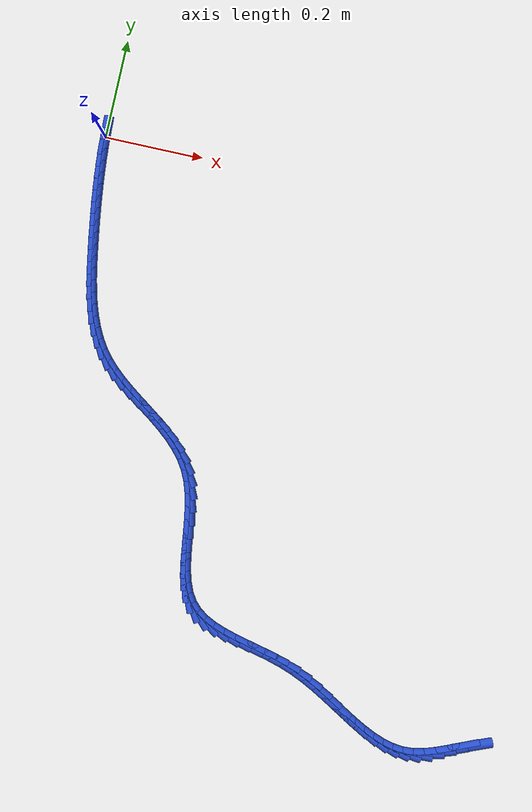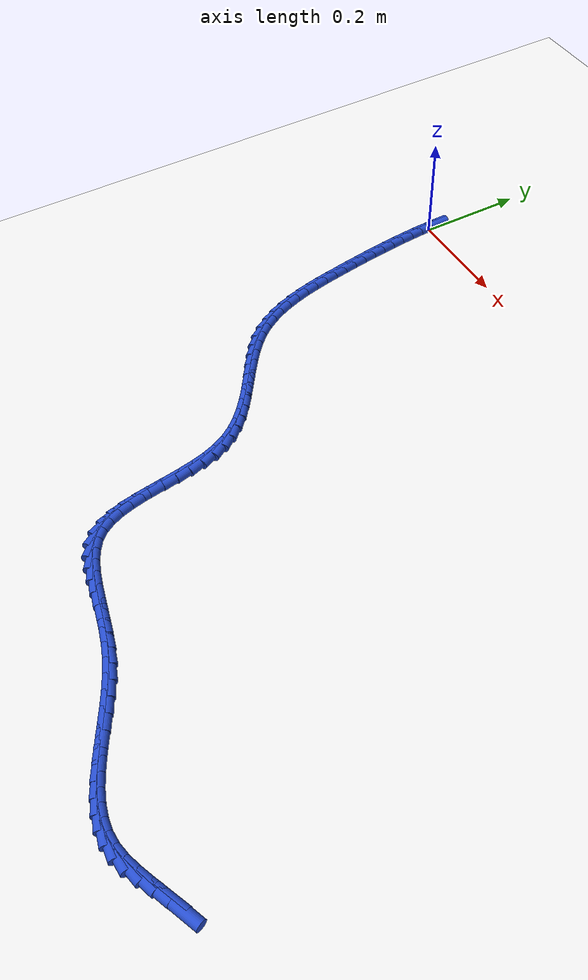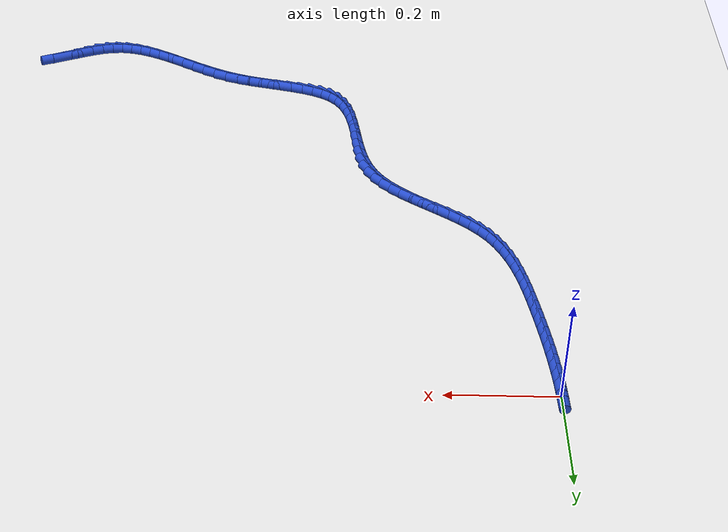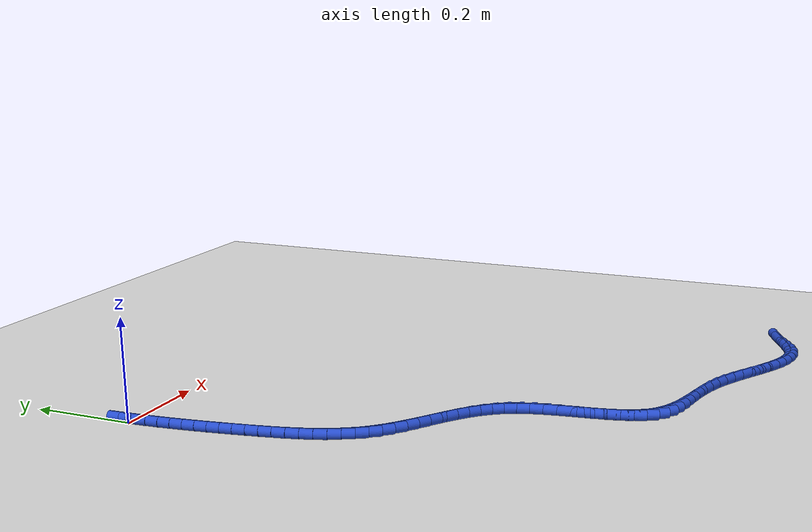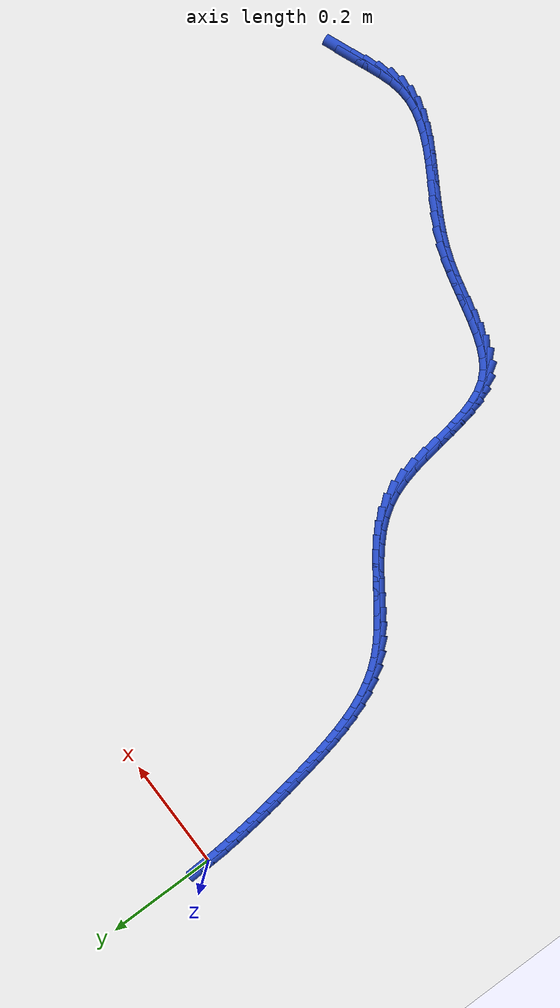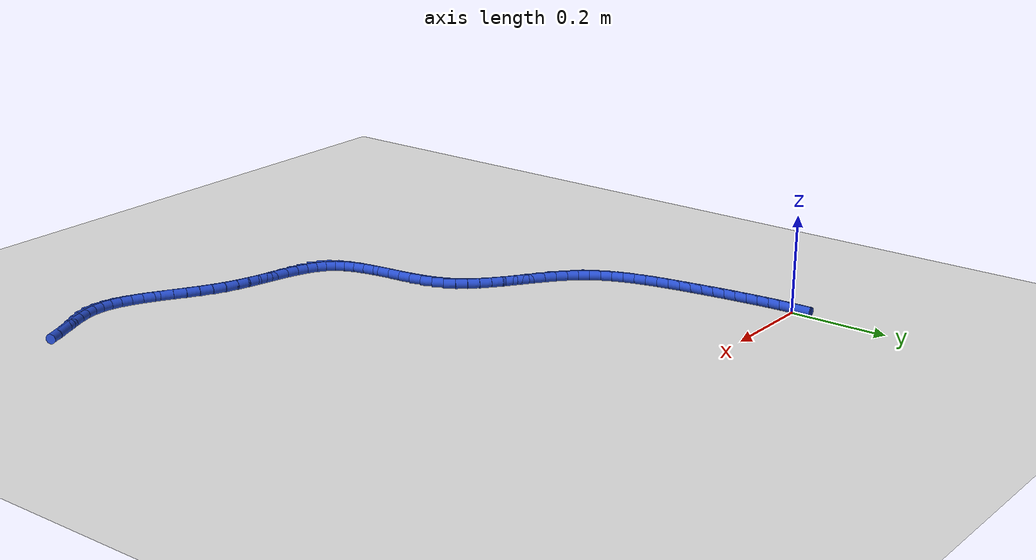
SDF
<sdf version="1.6">
 <world name="default">
  <model name="ground_plane">
   <static>1</static>
   <link name="link">
    <collision name="collision">
     <geometry><plane><normal>0 0 1</normal><size>100 100</size></plane></geometry>
     <surface><friction><ode><mu>100</mu><mu2>50</mu2></ode></friction></surface>
    </collision>
    <visual name="visual">
     <cast_shadows>0</cast_shadows>
     <geometry><plane><normal>0 0 1</normal><size>100 100</size></plane></geometry>
     <material>
      <script><uri>file://media/materials/scripts/gazebo.material</uri><name>Gazebo/WhiteGlow</name></script>
     </material>
    </visual>
   </link>
  </model>
  <model name="line">
   <link name="link_0">
    <pose>-6.342582709040201e-18 6.938893903907228e-17 0.01 0 1.57 -1.5347871412486813</pose>
    <collision name="collision">
     <geometry><cylinder><radius>0.01</radius><length>0.08</length></cylinder></geometry>
    </collision>
    <visual name="visual">
     <material>
      <script><name>Gazebo/Blue</name><uri>file://media/materials/scripts/gazebo.material</uri></script>
     </material>
     <geometry><cylinder><radius>0.01</radius><length>0.08</length></cylinder></geometry>
    </visual>
   </link>
   <link name="link_212">
    <pose>0.9769462641701763 -1.0291784544104534 0.01 0 1.57 0.3843465865898407</pose>
    <collision name="collision">
     <geometry><cylinder><radius>0.01</radius><length>0.08</length></cylinder></geometry>
    </collision>
    <visual name="visual">
     <material>
      <script><name>Gazebo/Blue</name><uri>file://media/materials/scripts/gazebo.material</uri></script>
     </material>
     <geometry><cylinder><radius>0.01</radius><length>0.08</length></cylinder></geometry>
    </visual>
   </link>
   <link name="link_213">
    <pose>0.9537179464258464 -1.0385734150703554 0.01 0 1.57 0.40229505601566673</pose>
    <collision name="collision">
     <geometry><cylinder><radius>0.01</radius><length>0.08</length></cylinder></geometry>
    </collision>
    <visual name="visual">
     <material>
      <script><name>Gazebo/Blue</name><uri>file://media/materials/scripts/gazebo.material</uri></script>
     </material>
     <geometry><cylinder><radius>0.01</radius><length>0.08</length></cylinder></geometry>
    </visual>
   </link>
   <link name="link_214">
    <pose>0.9308680753154793 -1.048296061683394 0.01 0 1.57 0.3817067622063833</pose>
    <collision name="collision">
     <geometry><cylinder><radius>0.01</radius><length>0.08</length></cylinder></geometry>
    </collision>
    <visual name="visual">
     <material>
      <script><name>Gazebo/Blue</name><uri>file://media/materials/scripts/gazebo.material</uri></script>
     </material>
     <geometry><cylinder><radius>0.01</radius><length>0.08</length></cylinder></geometry>
    </visual>
   </link>
   <link name="link_215">
    <pose>0.9083748429309372 -1.057324690325629 0.01 0 1.57 0.31877337188029486</pose>
    <collision name="collision">
     <geometry><cylinder><radius>0.01</radius><length>0.08</length></cylinder></geometry>
    </collision>
    <visual name="visual">
     <material>
      <script><name>Gazebo/Blue</name><uri>file://media/materials/scripts/gazebo.material</uri></script>
     </material>
     <geometry><cylinder><radius>0.01</radius><length>0.08</length></cylinder></geometry>
    </visual>
   </link>
   <link name="link_216">
    <pose>0.8862164413640825 -1.0646375970731223 0.01 0 1.57 0.20646389172152183</pose>
    <collision name="collision">
     <geometry><cylinder><radius>0.01</radius><length>0.08</length></cylinder></geometry>
    </collision>
    <visual name="visual">
     <material>
      <script><name>Gazebo/Blue</name><uri>file://media/materials/scripts/gazebo.material</uri></script>
     </material>
     <geometry><cylinder><radius>0.01</radius><length>0.08</length></cylinder></geometry>
    </visual>
   </link>
   <link name="link_217">
    <pose>0.8643710627067764 -1.0692130780019335 0.01 0 1.57 0.046662001896208075</pose>
    <collision name="collision">
     <geometry><cylinder><radius>0.01</radius><length>0.08</length></cylinder></geometry>
    </collision>
    <visual name="visual">
     <material>
      <script><name>Gazebo/Blue</name><uri>file://media/materials/scripts/gazebo.material</uri></script>
     </material>
     <geometry><cylinder><radius>0.01</radius><length>0.08</length></cylinder></geometry>
    </visual>
   </link>
   <link name="link_218">
    <pose>0.8428075852378676 -1.0702200039421013 0.01 0 1.57 -0.11222847916228765</pose>
    <collision name="collision">
     <geometry><cylinder><radius>0.01</radius><length>0.08</length></cylinder></geometry>
    </collision>
    <visual name="visual">
     <material>
      <script><name>Gazebo/Blue</name><uri>file://media/materials/scripts/gazebo.material</uri></script>
     </material>
     <geometry><cylinder><radius>0.01</radius><length>0.08</length></cylinder></geometry>
    </visual>
   </link>
   <link name="link_219">
    <pose>0.8214467311685518 -1.0678125919754724 0.01 0 1.57 -0.24660604657394164</pose>
    <collision name="collision">
     <geometry><cylinder><radius>0.01</radius><length>0.08</length></cylinder></geometry>
    </collision>
    <visual name="visual">
     <material>
      <script><name>Gazebo/Blue</name><uri>file://media/materials/scripts/gazebo.material</uri></script>
     </material>
     <geometry><cylinder><radius>0.01</radius><length>0.08</length></cylinder></geometry>
    </visual>
   </link>
   <link name="link_220">
    <pose>0.8001937051518223 -1.062462571982601 0.01 0 1.57 -0.3528030326790865</pose>
    <collision name="collision">
     <geometry><cylinder><radius>0.01</radius><length>0.08</length></cylinder></geometry>
    </collision>
    <visual name="visual">
     <material>
      <script><name>Gazebo/Blue</name><uri>file://media/materials/scripts/gazebo.material</uri></script>
     </material>
     <geometry><cylinder><radius>0.01</radius><length>0.08</length></cylinder></geometry>
    </visual>
   </link>
   <link name="link_221">
    <pose>0.7789537043178486 -1.054641827772413 0.01 0 1.57 -0.43158638162095014</pose>
    <collision name="collision">
     <geometry><cylinder><radius>0.01</radius><length>0.08</length></cylinder></geometry>
    </collision>
    <visual name="visual">
     <material>
      <script><name>Gazebo/Blue</name><uri>file://media/materials/scripts/gazebo.material</uri></script>
     </material>
     <geometry><cylinder><radius>0.01</radius><length>0.08</length></cylinder></geometry>
    </visual>
   </link>
   <link name="link_222">
    <pose>0.7576319257968009 -1.0448222431538354 0.01 0 1.57 -0.48562882518094386</pose>
    <collision name="collision">
     <geometry><cylinder><radius>0.01</radius><length>0.08</length></cylinder></geometry>
    </collision>
    <visual name="visual">
     <material>
      <script><name>Gazebo/Blue</name><uri>file://media/materials/scripts/gazebo.material</uri></script>
     </material>
     <geometry><cylinder><radius>0.01</radius><length>0.08</length></cylinder></geometry>
    </visual>
   </link>
   <link name="link_223">
    <pose>0.7361335667188486 -1.0334757019357936 0.01 0 1.57 -0.517820971242503</pose>
    <collision name="collision">
     <geometry><cylinder><radius>0.01</radius><length>0.08</length></cylinder></geometry>
    </collision>
    <visual name="visual">
     <material>
      <script><name>Gazebo/Blue</name><uri>file://media/materials/scripts/gazebo.material</uri></script>
     </material>
     <geometry><cylinder><radius>0.01</radius><length>0.08</length></cylinder></geometry>
    </visual>
   </link>
   <link name="link_224">
    <pose>0.7143638242141619 -1.0210740879272158 0.01 0 1.57 -0.5305038240289524</pose>
    <collision name="collision">
     <geometry><cylinder><radius>0.01</radius><length>0.08</length></cylinder></geometry>
    </collision>
    <visual name="visual">
     <material>
      <script><name>Gazebo/Blue</name><uri>file://media/materials/scripts/gazebo.material</uri></script>
     </material>
     <geometry><cylinder><radius>0.01</radius><length>0.08</length></cylinder></geometry>
    </visual>
   </link>
   <link name="link_225">
    <pose>0.6922278954129105 -1.008089284937027 0.01 0 1.57 -0.525249134142659</pose>
    <collision name="collision">
     <geometry><cylinder><radius>0.01</radius><length>0.08</length></cylinder></geometry>
    </collision>
    <visual name="visual">
     <material>
      <script><name>Gazebo/Blue</name><uri>file://media/materials/scripts/gazebo.material</uri></script>
     </material>
     <geometry><cylinder><radius>0.01</radius><length>0.08</length></cylinder></geometry>
    </visual>
   </link>
   <link name="link_226">
    <pose>0.6696309774452638 -0.9949931767741544 0.01 0 1.57 -0.5028942442427573</pose>
    <collision name="collision">
     <geometry><cylinder><radius>0.01</radius><length>0.08</length></cylinder></geometry>
    </collision>
    <visual name="visual">
     <material>
      <script><name>Gazebo/Blue</name><uri>file://media/materials/scripts/gazebo.material</uri></script>
     </material>
     <geometry><cylinder><radius>0.01</radius><length>0.08</length></cylinder></geometry>
    </visual>
   </link>
   <link name="link_227">
    <pose>0.646478267441393 -0.9822576472475251 0.01 0 1.57 -0.46369515173904946</pose>
    <collision name="collision">
     <geometry><cylinder><radius>0.01</radius><length>0.08</length></cylinder></geometry>
    </collision>
    <visual name="visual">
     <material>
      <script><name>Gazebo/Blue</name><uri>file://media/materials/scripts/gazebo.material</uri></script>
     </material>
     <geometry><cylinder><radius>0.01</radius><length>0.08</length></cylinder></geometry>
    </visual>
   </link>
   <link name="link_228">
    <pose>0.6226749625314671 -0.9703545801660651 0.01 0 1.57 -0.40756780398236364</pose>
    <collision name="collision">
     <geometry><cylinder><radius>0.01</radius><length>0.08</length></cylinder></geometry>
    </collision>
    <visual name="visual">
     <material>
      <script><name>Gazebo/Blue</name><uri>file://media/materials/scripts/gazebo.material</uri></script>
     </material>
     <geometry><cylinder><radius>0.01</radius><length>0.08</length></cylinder></geometry>
    </visual>
   </link>
   <link name="link_229">
    <pose>0.5981262598456564 -0.9597558593387012 0.01 0 1.57 -0.3370784449283346</pose>
    <collision name="collision">
     <geometry><cylinder><radius>0.01</radius><length>0.08</length></cylinder></geometry>
    </collision>
    <visual name="visual">
     <material>
      <script><name>Gazebo/Blue</name><uri>file://media/materials/scripts/gazebo.material</uri></script>
     </material>
     <geometry><cylinder><radius>0.01</radius><length>0.08</length></cylinder></geometry>
    </visual>
   </link>
   <link name="link_230">
    <pose>0.5727712516797364 -0.9508701172717429 0.01 0 1.57 -0.2772925375074847</pose>
    <collision name="collision">
     <geometry><cylinder><radius>0.01</radius><length>0.08</length></cylinder></geometry>
    </collision>
    <visual name="visual">
     <material>
      <script><name>Gazebo/Blue</name><uri>file://media/materials/scripts/gazebo.material</uri></script>
     </material>
     <geometry><cylinder><radius>0.01</radius><length>0.08</length></cylinder></geometry>
    </visual>
   </link>
   <link name="link_231">
    <pose>0.5468742138085351 -0.9434991660511947 0.01 0 1.57 -0.24113589728125084</pose>
    <collision name="collision">
     <geometry><cylinder><radius>0.01</radius><length>0.08</length></cylinder></geometry>
    </collision>
    <visual name="visual">
     <material>
      <script><name>Gazebo/Blue</name><uri>file://media/materials/scripts/gazebo.material</uri></script>
     </material>
     <geometry><cylinder><radius>0.01</radius><length>0.08</length></cylinder></geometry>
    </visual>
   </link>
   <link name="link_232">
    <pose>0.5208805679966462 -0.9371067837215793 0.01 0 1.57 -0.22813520265295148</pose>
    <collision name="collision">
     <geometry><cylinder><radius>0.01</radius><length>0.08</length></cylinder></geometry>
    </collision>
    <visual name="visual">
     <material>
      <script><name>Gazebo/Blue</name><uri>file://media/materials/scripts/gazebo.material</uri></script>
     </material>
     <geometry><cylinder><radius>0.01</radius><length>0.08</length></cylinder></geometry>
    </visual>
   </link>
   <link name="link_233">
    <pose>0.49523769456325606 -0.931153093495617 0.01 0 1.57 -0.23904874294139858</pose>
    <collision name="collision">
     <geometry><cylinder><radius>0.01</radius><length>0.08</length></cylinder></geometry>
    </collision>
    <visual name="visual">
     <material>
      <script><name>Gazebo/Blue</name><uri>file://media/materials/scripts/gazebo.material</uri></script>
     </material>
     <geometry><cylinder><radius>0.01</radius><length>0.08</length></cylinder></geometry>
    </visual>
   </link>
   <link name="link_234">
    <pose>0.4703929738275505 -0.9250982185860284 0.01 0 1.57 -0.27646961595855285</pose>
    <collision name="collision">
     <geometry><cylinder><radius>0.01</radius><length>0.08</length></cylinder></geometry>
    </collision>
    <visual name="visual">
     <material>
      <script><name>Gazebo/Blue</name><uri>file://media/materials/scripts/gazebo.material</uri></script>
     </material>
     <geometry><cylinder><radius>0.01</radius><length>0.08</length></cylinder></geometry>
    </visual>
   </link>
   <link name="link_235">
    <pose>0.44679378610871767 -0.9184022822055331 0.01 0 1.57 -0.34517630009046507</pose>
    <collision name="collision">
     <geometry><cylinder><radius>0.01</radius><length>0.08</length></cylinder></geometry>
    </collision>
    <visual name="visual">
     <material>
      <script><name>Gazebo/Blue</name><uri>file://media/materials/scripts/gazebo.material</uri></script>
     </material>
     <geometry><cylinder><radius>0.01</radius><length>0.08</length></cylinder></geometry>
    </visual>
   </link>
   <link name="link_236">
    <pose>0.424887511725943 -0.9105254075668512 0.01 0 1.57 -0.45203393595349356</pose>
    <collision name="collision">
     <geometry><cylinder><radius>0.01</radius><length>0.08</length></cylinder></geometry>
    </collision>
    <visual name="visual">
     <material>
      <script><name>Gazebo/Blue</name><uri>file://media/materials/scripts/gazebo.material</uri></script>
     </material>
     <geometry><cylinder><radius>0.01</radius><length>0.08</length></cylinder></geometry>
    </visual>
   </link>
   <link name="link_237">
    <pose>0.4051215309984133 -0.9009277178827028 0.01 0 1.57 -0.6041939298585265</pose>
    <collision name="collision">
     <geometry><cylinder><radius>0.01</radius><length>0.08</length></cylinder></geometry>
    </collision>
    <visual name="visual">
     <material>
      <script><name>Gazebo/Blue</name><uri>file://media/materials/scripts/gazebo.material</uri></script>
     </material>
     <geometry><cylinder><radius>0.01</radius><length>0.08</length></cylinder></geometry>
    </visual>
   </link>
   <link name="link_238">
    <pose>0.38794322424531485 -0.8890693363658079 0.01 0 1.57 -0.8031093343890058</pose>
    <collision name="collision">
     <geometry><cylinder><radius>0.01</radius><length>0.08</length></cylinder></geometry>
    </collision>
    <visual name="visual">
     <material>
      <script><name>Gazebo/Blue</name><uri>file://media/materials/scripts/gazebo.material</uri></script>
     </material>
     <geometry><cylinder><radius>0.01</radius><length>0.08</length></cylinder></geometry>
    </visual>
   </link>
   <link name="link_239">
    <pose>0.3737972174107305 -0.8744131557179531 0.01 0 1.57 -1.0141685234866855</pose>
    <collision name="collision">
     <geometry><cylinder><radius>0.01</radius><length>0.08</length></cylinder></geometry>
    </collision>
    <visual name="visual">
     <material>
      <script><name>Gazebo/Blue</name><uri>file://media/materials/scripts/gazebo.material</uri></script>
     </material>
     <geometry><cylinder><radius>0.01</radius><length>0.08</length></cylinder></geometry>
    </visual>
   </link>
   <link name="link_240">
    <pose>0.3628045270379873 -0.8567474537695088 0.01 0 1.57 -1.1802188182242952</pose>
    <collision name="collision">
     <geometry><cylinder><radius>0.01</radius><length>0.08</length></cylinder></geometry>
    </collision>
    <visual name="visual">
     <material>
      <script><name>Gazebo/Blue</name><uri>file://media/materials/scripts/gazebo.material</uri></script>
     </material>
     <geometry><cylinder><radius>0.01</radius><length>0.08</length></cylinder></geometry>
    </visual>
   </link>
   <link name="link_241">
    <pose>0.3544628071019571 -0.836487291469682 0.01 0 1.57 -1.297750704465856</pose>
    <collision name="collision">
     <geometry><cylinder><radius>0.01</radius><length>0.08</length></cylinder></geometry>
    </collision>
    <visual name="visual">
     <material>
      <script><name>Gazebo/Blue</name><uri>file://media/materials/scripts/gazebo.material</uri></script>
     </material>
     <geometry><cylinder><radius>0.01</radius><length>0.08</length></cylinder></geometry>
    </visual>
   </link>
   <link name="link_242">
    <pose>0.34819880268826864 -0.8141190277521955 0.01 0 1.57 -1.3749426455116218</pose>
    <collision name="collision">
     <geometry><cylinder><radius>0.01</radius><length>0.08</length></cylinder></geometry>
    </collision>
    <visual name="visual">
     <material>
      <script><name>Gazebo/Blue</name><uri>file://media/materials/scripts/gazebo.material</uri></script>
     </material>
     <geometry><cylinder><radius>0.01</radius><length>0.08</length></cylinder></geometry>
    </visual>
   </link>
   <link name="link_243">
    <pose>0.3434392588825506 -0.7901290215507704 0.01 0 1.57 -1.419590022154002</pose>
    <collision name="collision">
     <geometry><cylinder><radius>0.01</radius><length>0.08</length></cylinder></geometry>
    </collision>
    <visual name="visual">
     <material>
      <script><name>Gazebo/Blue</name><uri>file://media/materials/scripts/gazebo.material</uri></script>
     </material>
     <geometry><cylinder><radius>0.01</radius><length>0.08</length></cylinder></geometry>
    </visual>
   </link>
   <link name="link_244">
    <pose>0.33961092077043226 -0.7650036317991313 0.01 0 1.57 -1.4369565923082241</pose>
    <collision name="collision">
     <geometry><cylinder><radius>0.01</radius><length>0.08</length></cylinder></geometry>
    </collision>
    <visual name="visual">
     <material>
      <script><name>Gazebo/Blue</name><uri>file://media/materials/scripts/gazebo.material</uri></script>
     </material>
     <geometry><cylinder><radius>0.01</radius><length>0.08</length></cylinder></geometry>
    </visual>
   </link>
   <link name="link_245">
    <pose>0.33614053343754213 -0.7392292174309996 0.01 0 1.57 -1.429640126534961</pose>
    <collision name="collision">
     <geometry><cylinder><radius>0.01</radius><length>0.08</length></cylinder></geometry>
    </collision>
    <visual name="visual">
     <material>
      <script><name>Gazebo/Blue</name><uri>file://media/materials/scripts/gazebo.material</uri></script>
     </material>
     <geometry><cylinder><radius>0.01</radius><length>0.08</length></cylinder></geometry>
    </visual>
   </link>
   <link name="link_246">
    <pose>0.3324548419695091 -0.7132921373800978 0.01 0 1.57 -1.3978572240453668</pose>
    <collision name="collision">
     <geometry><cylinder><radius>0.01</radius><length>0.08</length></cylinder></geometry>
    </collision>
    <visual name="visual">
     <material>
      <script><name>Gazebo/Blue</name><uri>file://media/materials/scripts/gazebo.material</uri></script>
     </material>
     <geometry><cylinder><radius>0.01</radius><length>0.08</length></cylinder></geometry>
    </visual>
   </link>
   <link name="link_247">
    <pose>0.327980591451962 -0.6876787505801482 0.01 0 1.57 -1.3397062040399756</pose>
    <collision name="collision">
     <geometry><cylinder><radius>0.01</radius><length>0.08</length></cylinder></geometry>
    </collision>
    <visual name="visual">
     <material>
      <script><name>Gazebo/Blue</name><uri>file://media/materials/scripts/gazebo.material</uri></script>
     </material>
     <geometry><cylinder><radius>0.01</radius><length>0.08</length></cylinder></geometry>
    </visual>
   </link>
   <link name="link_248">
    <pose>0.3221445269705297 -0.6628754159648734 0.01 0 1.57 -1.25151758639383</pose>
    <collision name="collision">
     <geometry><cylinder><radius>0.01</radius><length>0.08</length></cylinder></geometry>
    </collision>
    <visual name="visual">
     <material>
      <script><name>Gazebo/Blue</name><uri>file://media/materials/scripts/gazebo.material</uri></script>
     </material>
     <geometry><cylinder><radius>0.01</radius><length>0.08</length></cylinder></geometry>
    </visual>
   </link>
   <link name="link_249">
    <pose>0.31437339361084105 -0.6393684924679959 0.01 0 1.57 -1.1291759702834105</pose>
    <collision name="collision">
     <geometry><cylinder><radius>0.01</radius><length>0.08</length></cylinder></geometry>
    </collision>
    <visual name="visual">
     <material>
      <script><name>Gazebo/Blue</name><uri>file://media/materials/scripts/gazebo.material</uri></script>
     </material>
     <geometry><cylinder><radius>0.01</radius><length>0.08</length></cylinder></geometry>
    </visual>
   </link>
   <link name="link_250">
    <pose>0.304100556294397 -0.6176390648166512 0.01 0 1.57 -0.9903884017779636</pose>
    <collision name="collision">
     <geometry><cylinder><radius>0.01</radius><length>0.08</length></cylinder></geometry>
    </collision>
    <visual name="visual">
     <material>
      <script><name>Gazebo/Blue</name><uri>file://media/materials/scripts/gazebo.material</uri></script>
     </material>
     <geometry><cylinder><radius>0.01</radius><length>0.08</length></cylinder></geometry>
    </visual>
   </link>
   <link name="link_251">
    <pose>0.2911358353813599 -0.5978682852634433 0.01 0 1.57 -0.8694797479286598</pose>
    <collision name="collision">
     <geometry><cylinder><radius>0.01</radius><length>0.08</length></cylinder></geometry>
    </collision>
    <visual name="visual">
     <material>
      <script><name>Gazebo/Blue</name><uri>file://media/materials/scripts/gazebo.material</uri></script>
     </material>
     <geometry><cylinder><radius>0.01</radius><length>0.08</length></cylinder></geometry>
    </visual>
   </link>
   <link name="link_252">
    <pose>0.2758609370631213 -0.5797816687799179 0.01 0 1.57 -0.772395341361187</pose>
    <collision name="collision">
     <geometry><cylinder><radius>0.01</radius><length>0.08</length></cylinder></geometry>
    </collision>
    <visual name="visual">
     <material>
      <script><name>Gazebo/Blue</name><uri>file://media/materials/scripts/gazebo.material</uri></script>
     </material>
     <geometry><cylinder><radius>0.01</radius><length>0.08</length></cylinder></geometry>
    </visual>
   </link>
   <link name="link_253">
    <pose>0.25870542851435735 -0.5630665981666529 0.01 0 1.57 -0.6994986316632609</pose>
    <collision name="collision">
     <geometry><cylinder><radius>0.01</radius><length>0.08</length></cylinder></geometry>
    </collision>
    <visual name="visual">
     <material>
      <script><name>Gazebo/Blue</name><uri>file://media/materials/scripts/gazebo.material</uri></script>
     </material>
     <geometry><cylinder><radius>0.01</radius><length>0.08</length></cylinder></geometry>
    </visual>
   </link>
   <link name="link_254">
    <pose>0.24009887690974302 -0.5474104562242242 0.01 0 1.57 -0.6496291529321546</pose>
    <collision name="collision">
     <geometry><cylinder><radius>0.01</radius><length>0.08</length></cylinder></geometry>
    </collision>
    <visual name="visual">
     <material>
      <script><name>Gazebo/Blue</name><uri>file://media/materials/scripts/gazebo.material</uri></script>
     </material>
     <geometry><cylinder><radius>0.01</radius><length>0.08</length></cylinder></geometry>
    </visual>
   </link>
   <link name="link_255">
    <pose>0.22047084942395354 -0.5325006257532081 0.01 0 1.57 -0.6213399500990374</pose>
    <collision name="collision">
     <geometry><cylinder><radius>0.01</radius><length>0.08</length></cylinder></geometry>
    </collision>
    <visual name="visual">
     <material>
      <script><name>Gazebo/Blue</name><uri>file://media/materials/scripts/gazebo.material</uri></script>
     </material>
     <geometry><cylinder><radius>0.01</radius><length>0.08</length></cylinder></geometry>
    </visual>
   </link>
   <link name="link_256">
    <pose>0.20025091323166422 -0.5180244895541809 0.01 0 1.57 -0.6136001715673899</pose>
    <collision name="collision">
     <geometry><cylinder><radius>0.01</radius><length>0.08</length></cylinder></geometry>
    </collision>
    <visual name="visual">
     <material>
      <script><name>Gazebo/Blue</name><uri>file://media/materials/scripts/gazebo.material</uri></script>
     </material>
     <geometry><cylinder><radius>0.01</radius><length>0.08</length></cylinder></geometry>
    </visual>
   </link>
   <link name="link_257">
    <pose>0.1798686355075505 -0.5036694304277191 0.01 0 1.57 -0.6261075437698371</pose>
    <collision name="collision">
     <geometry><cylinder><radius>0.01</radius><length>0.08</length></cylinder></geometry>
    </collision>
    <visual name="visual">
     <material>
      <script><name>Gazebo/Blue</name><uri>file://media/materials/scripts/gazebo.material</uri></script>
     </material>
     <geometry><cylinder><radius>0.01</radius><length>0.08</length></cylinder></geometry>
    </visual>
   </link>
   <link name="link_258">
    <pose>0.1597535834262875 -0.4891228311743993 0.01 0 1.57 -0.659361725865715</pose>
    <collision name="collision">
     <geometry><cylinder><radius>0.01</radius><length>0.08</length></cylinder></geometry>
    </collision>
    <visual name="visual">
     <material>
      <script><name>Gazebo/Blue</name><uri>file://media/materials/scripts/gazebo.material</uri></script>
     </material>
     <geometry><cylinder><radius>0.01</radius><length>0.08</length></cylinder></geometry>
    </visual>
   </link>
   <link name="link_259">
    <pose>0.14033532416255073 -0.4740720745947977 0.01 0 1.57 -0.7145448193470851</pose>
    <collision name="collision">
     <geometry><cylinder><radius>0.01</radius><length>0.08</length></cylinder></geometry>
    </collision>
    <visual name="visual">
     <material>
      <script><name>Gazebo/Blue</name><uri>file://media/materials/scripts/gazebo.material</uri></script>
     </material>
     <geometry><cylinder><radius>0.01</radius><length>0.08</length></cylinder></geometry>
    </visual>
   </link>
   <link name="link_260">
    <pose>0.12204342489101534 -0.4582045434894909 0.01 0 1.57 -0.7931338030794454</pose>
    <collision name="collision">
     <geometry><cylinder><radius>0.01</radius><length>0.08</length></cylinder></geometry>
    </collision>
    <visual name="visual">
     <material>
      <script><name>Gazebo/Blue</name><uri>file://media/materials/scripts/gazebo.material</uri></script>
     </material>
     <geometry><cylinder><radius>0.01</radius><length>0.08</length></cylinder></geometry>
    </visual>
   </link>
   <link name="link_261">
    <pose>0.10530745278635623 -0.4412076206590548 0.01 0 1.57 -0.8948771257628803</pose>
    <collision name="collision">
     <geometry><cylinder><radius>0.01</radius><length>0.08</length></cylinder></geometry>
    </collision>
    <visual name="visual">
     <material>
      <script><name>Gazebo/Blue</name><uri>file://media/materials/scripts/gazebo.material</uri></script>
     </material>
     <geometry><cylinder><radius>0.01</radius><length>0.08</length></cylinder></geometry>
    </visual>
   </link>
   <link name="link_262">
    <pose>0.09053480491436372 -0.42278634812543625 0.01 0 1.57 -1.000477435084099</pose>
    <collision name="collision">
     <geometry><cylinder><radius>0.01</radius><length>0.08</length></cylinder></geometry>
    </collision>
    <visual name="visual">
     <material>
      <script><name>Gazebo/Blue</name><uri>file://media/materials/scripts/gazebo.material</uri></script>
     </material>
     <geometry><cylinder><radius>0.01</radius><length>0.08</length></cylinder></geometry>
    </visual>
   </link>
   <link name="link_263">
    <pose>0.07779095537419388 -0.40291812080655237 0.01 0 1.57 -1.0937517061492512</pose>
    <collision name="collision">
     <geometry><cylinder><radius>0.01</radius><length>0.08</length></cylinder></geometry>
    </collision>
    <visual name="visual">
     <material>
      <script><name>Gazebo/Blue</name><uri>file://media/materials/scripts/gazebo.material</uri></script>
     </material>
     <geometry><cylinder><radius>0.01</radius><length>0.08</length></cylinder></geometry>
    </visual>
   </link>
   <link name="link_264">
    <pose>0.06687285299956797 -0.3817942228316913 0.01 0 1.57 -1.1737063230180873</pose>
    <collision name="collision">
     <geometry><cylinder><radius>0.01</radius><length>0.08</length></cylinder></geometry>
    </collision>
    <visual name="visual">
     <material>
      <script><name>Gazebo/Blue</name><uri>file://media/materials/scripts/gazebo.material</uri></script>
     </material>
     <geometry><cylinder><radius>0.01</radius><length>0.08</length></cylinder></geometry>
    </visual>
   </link>
   <link name="link_265">
    <pose>0.05757022527315894 -0.3596116903739142 0.01 0 1.57 -1.240631748566986</pose>
    <collision name="collision">
     <geometry><cylinder><radius>0.01</radius><length>0.08</length></cylinder></geometry>
    </collision>
    <visual name="visual">
     <material>
      <script><name>Gazebo/Blue</name><uri>file://media/materials/scripts/gazebo.material</uri></script>
     </material>
     <geometry><cylinder><radius>0.01</radius><length>0.08</length></cylinder></geometry>
    </visual>
   </link>
   <link name="link_266">
    <pose>0.049672799677639566 -0.3365675596062818 0.01 0 1.57 -1.2952837795069128</pose>
    <collision name="collision">
     <geometry><cylinder><radius>0.01</radius><length>0.08</length></cylinder></geometry>
    </collision>
    <visual name="visual">
     <material>
      <script><name>Gazebo/Blue</name><uri>file://media/materials/scripts/gazebo.material</uri></script>
     </material>
     <geometry><cylinder><radius>0.01</radius><length>0.08</length></cylinder></geometry>
    </visual>
   </link>
   <link name="link_267">
    <pose>0.04297030369568277 -0.3128588667018552 0.01 0 1.57 -1.3385569544018658</pose>
    <collision name="collision">
     <geometry><cylinder><radius>0.01</radius><length>0.08</length></cylinder></geometry>
    </collision>
    <visual name="visual">
     <material>
      <script><name>Gazebo/Blue</name><uri>file://media/materials/scripts/gazebo.material</uri></script>
     </material>
     <geometry><cylinder><radius>0.01</radius><length>0.08</length></cylinder></geometry>
    </visual>
   </link>
   <link name="link_268">
    <pose>0.03725246480996139 -0.2886826478336952 0.01 0 1.57 -1.3712733188046733</pose>
    <collision name="collision">
     <geometry><cylinder><radius>0.01</radius><length>0.08</length></cylinder></geometry>
    </collision>
    <visual name="visual">
     <material>
      <script><name>Gazebo/Blue</name><uri>file://media/materials/scripts/gazebo.material</uri></script>
     </material>
     <geometry><cylinder><radius>0.01</radius><length>0.08</length></cylinder></geometry>
    </visual>
   </link>
   <link name="link_269">
    <pose>0.03230901050314829 -0.26423593917486277 0.01 0 1.57 -1.3940581515713806</pose>
    <collision name="collision">
     <geometry><cylinder><radius>0.01</radius><length>0.08</length></cylinder></geometry>
    </collision>
    <visual name="visual">
     <material>
      <script><name>Gazebo/Blue</name><uri>file://media/materials/scripts/gazebo.material</uri></script>
     </material>
     <geometry><cylinder><radius>0.01</radius><length>0.08</length></cylinder></geometry>
    </visual>
   </link>
   <link name="link_270">
    <pose>0.027929668257916207 -0.239715776898418 0.01 0 1.57 -1.4073143738342389</pose>
    <collision name="collision">
     <geometry><cylinder><radius>0.01</radius><length>0.08</length></cylinder></geometry>
    </collision>
    <visual name="visual">
     <material>
      <script><name>Gazebo/Blue</name><uri>file://media/materials/scripts/gazebo.material</uri></script>
     </material>
     <geometry><cylinder><radius>0.01</radius><length>0.08</length></cylinder></geometry>
    </visual>
   </link>
   <link name="link_271">
    <pose>0.02390517148644614 -0.2153181031131672 0.01 0 1.57 -1.414886098961005</pose>
    <collision name="collision">
     <geometry><cylinder><radius>0.01</radius><length>0.08</length></cylinder></geometry>
    </collision>
    <visual name="visual">
     <material>
      <script><name>Gazebo/Blue</name><uri>file://media/materials/scripts/gazebo.material</uri></script>
     </material>
     <geometry><cylinder><radius>0.01</radius><length>0.08</length></cylinder></geometry>
    </visual>
   </link>
   <link name="link_272">
    <pose>0.020106529638524717 -0.1911515504865646 0.01 0 1.57 -1.4232179080073815</pose>
    <collision name="collision">
     <geometry><cylinder><radius>0.01</radius><length>0.08</length></cylinder></geometry>
    </collision>
    <visual name="visual">
     <material>
      <script><name>Gazebo/Blue</name><uri>file://media/materials/scripts/gazebo.material</uri></script>
     </material>
     <geometry><cylinder><radius>0.01</radius><length>0.08</length></cylinder></geometry>
    </visual>
   </link>
   <link name="link_273">
    <pose>0.01654222847484499 -0.16717523035613907 0.01 0 1.57 -1.4329285879943212</pose>
    <collision name="collision">
     <geometry><cylinder><radius>0.01</radius><length>0.08</length></cylinder></geometry>
    </collision>
    <visual name="visual">
     <material>
      <script><name>Gazebo/Blue</name><uri>file://media/materials/scripts/gazebo.material</uri></script>
     </material>
     <geometry><cylinder><radius>0.01</radius><length>0.08</length></cylinder></geometry>
    </visual>
   </link>
   <link name="link_274">
    <pose>0.013234248239599171 -0.14333357725360346 0.01 0 1.57 -1.4439824715003136</pose>
    <collision name="collision">
     <geometry><cylinder><radius>0.01</radius><length>0.08</length></cylinder></geometry>
    </collision>
    <visual name="visual">
     <material>
      <script><name>Gazebo/Blue</name><uri>file://media/materials/scripts/gazebo.material</uri></script>
     </material>
     <geometry><cylinder><radius>0.01</radius><length>0.08</length></cylinder></geometry>
    </visual>
   </link>
   <link name="link_275">
    <pose>0.010204569176979464 -0.11957102571067062 0.01 0 1.57 -1.4563237931749675</pose>
    <collision name="collision">
     <geometry><cylinder><radius>0.01</radius><length>0.08</length></cylinder></geometry>
    </collision>
    <visual name="visual">
     <material>
      <script><name>Gazebo/Blue</name><uri>file://media/materials/scripts/gazebo.material</uri></script>
     </material>
     <geometry><cylinder><radius>0.01</radius><length>0.08</length></cylinder></geometry>
    </visual>
   </link>
   <link name="link_276">
    <pose>0.007475171531178091 -0.09583201025905358 0.01 0 1.57 -1.4698769751363119</pose>
    <collision name="collision">
     <geometry><cylinder><radius>0.01</radius><length>0.08</length></cylinder></geometry>
    </collision>
    <visual name="visual">
     <material>
      <script><name>Gazebo/Blue</name><uri>file://media/materials/scripts/gazebo.material</uri></script>
     </material>
     <geometry><cylinder><radius>0.01</radius><length>0.08</length></cylinder></geometry>
    </visual>
   </link>
   <link name="link_277">
    <pose>0.005068035546387249 -0.07206096543046515 0.01 0 1.57 -1.4845476390165566</pose>
    <collision name="collision">
     <geometry><cylinder><radius>0.01</radius><length>0.08</length></cylinder></geometry>
    </collision>
    <visual name="visual">
     <material>
      <script><name>Gazebo/Blue</name><uri>file://media/materials/scripts/gazebo.material</uri></script>
     </material>
     <geometry><cylinder><radius>0.01</radius><length>0.08</length></cylinder></geometry>
    </visual>
   </link>
   <link name="link_278">
    <pose>0.0030051414667991525 -0.048202325756618286 0.01 0 1.57 -1.5002243575184078</pose>
    <collision name="collision">
     <geometry><cylinder><radius>0.01</radius><length>0.08</length></cylinder></geometry>
    </collision>
    <visual name="visual">
     <material>
      <script><name>Gazebo/Blue</name><uri>file://media/materials/scripts/gazebo.material</uri></script>
     </material>
     <geometry><cylinder><radius>0.01</radius><length>0.08</length></cylinder></geometry>
    </visual>
   </link>
   <link name="link_279">
    <pose>0.001308469536605965 -0.024200525769225083 0.01 0 1.57 -1.5167811061331224</pose>
    <collision name="collision">
     <geometry><cylinder><radius>0.01</radius><length>0.08</length></cylinder></geometry>
    </collision>
    <visual name="visual">
     <material>
      <script><name>Gazebo/Blue</name><uri>file://media/materials/scripts/gazebo.material</uri></script>
     </material>
     <geometry><cylinder><radius>0.01</radius><length>0.08</length></cylinder></geometry>
    </visual>
   </link>
   <link name="link_280">
    <pose>2.3852447794681098e-18 1.3877787807814457e-17 0.01 0 1.57 -1.5340803206152978</pose>
    <collision name="collision">
     <geometry><cylinder><radius>0.01</radius><length>0.08</length></cylinder></geometry>
    </collision>
    <visual name="visual">
     <material>
      <script><name>Gazebo/Blue</name><uri>file://media/materials/scripts/gazebo.material</uri></script>
     </material>
     <geometry><cylinder><radius>0.01</radius><length>0.08</length></cylinder></geometry>
    </visual>
   </link>
  </model>
 </world>
</sdf>
